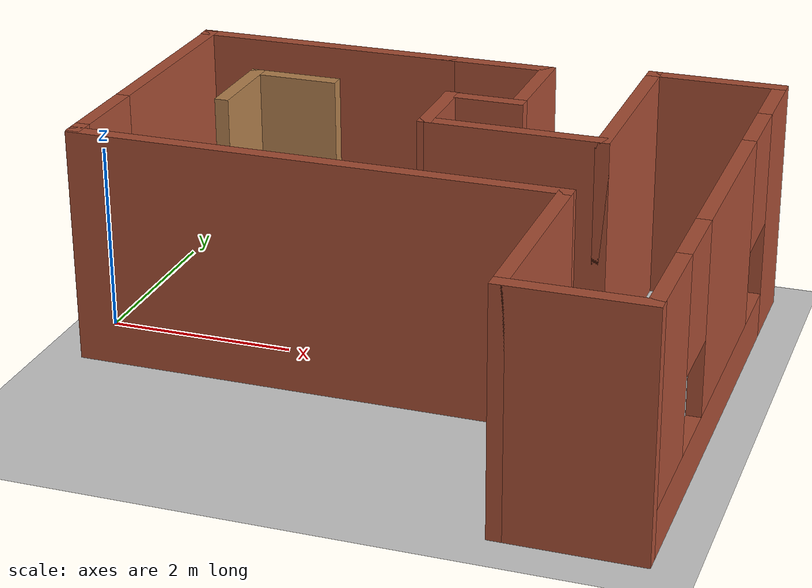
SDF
<sdf version="1.7">
 <world name="default">
  <light name="sun" type="directional">
   <pose>0 0 10 0 -0 0</pose>
   <diffuse>0.8 0.8 0.8 1</diffuse>
   <specular>0.2 0.2 0.2 1</specular>
   <attenuation>
    <range>1000</range>
    <constant>0.9</constant>
    <linear>0.01</linear>
    <quadratic>0.001</quadratic>
   </attenuation>
   <direction>-0.5 0.1 -0.9</direction>
   <spot><inner_angle>0</inner_angle><outer_angle>0</outer_angle><falloff>0</falloff></spot>
  </light>
  <model name="ground_plane">
   <static>1</static>
   <link name="link">
    <collision name="collision">
     <geometry><plane><normal>0 0 1</normal><size>100 100</size></plane></geometry>
     <surface><friction><ode><mu>100</mu><mu2>50</mu2></ode></friction></surface>
    </collision>
    <visual name="visual">
     <cast_shadows>0</cast_shadows>
     <geometry><plane><normal>0 0 1</normal><size>100 100</size></plane></geometry>
     <material>
      <script><uri>file://media/materials/scripts/gazebo.material</uri><name>Gazebo/Grey</name></script>
     </material>
    </visual>
   </link>
  </model>
  <gravity>0 0 -9.8</gravity>
  <magnetic_field>6e-06 2.3e-05 -4.2e-05</magnetic_field>
  <atmosphere type="adiabatic"/>
  <physics type="ode">
   <max_step_size>0.001</max_step_size>
   <real_time_factor>1</real_time_factor>
   <real_time_update_rate>1000</real_time_update_rate>
  </physics>
  <scene><ambient>0.4 0.4 0.4 1</ambient><background>0.7 0.7 0.7 1</background><shadows>1</shadows></scene>
  <spherical_coordinates>
   <surface_model>EARTH_WGS84</surface_model>
   <latitude_deg>0</latitude_deg>
   <longitude_deg>0</longitude_deg>
   <elevation>0</elevation>
   <heading_deg>0</heading_deg>
  </spherical_coordinates>
  <model name="house2">
   <pose>3.292 -0.065776 -0.005074 0 -0 0</pose>
   <link name="Wall_0">
    <pose>-3.2031 0.954274 0 0 -0 1.56888</pose>
    <visual name="Wall_0_Visual_0">
     <pose>-1.57705 0 1.25 0 -0 0</pose>
     <geometry><box><size>0.227383 0.15 2.5</size></box></geometry>
     <material>
      <script><uri>file://media/materials/scripts/gazebo.material</uri><name>Gazebo/Bricks</name></script>
      <ambient>1 1 1 1</ambient>
     </material>
     <meta><layer>0</layer></meta>
    </visual>
    <collision name="Wall_0_Collision_0">
     <geometry><box><size>0.227383 0.15 2.5</size></box></geometry>
     <pose>-1.57705 0 1.25 0 -0 0</pose>
    </collision>
    <visual name="Wall_0_Visual_1">
     <pose>0.563691 0 1.25 0 -0 0</pose>
     <geometry><box><size>2.2541 0.15 2.5</size></box></geometry>
     <material>
      <script><uri>file://media/materials/scripts/gazebo.material</uri><name>Gazebo/Bricks</name></script>
      <ambient>1 1 1 1</ambient>
     </material>
     <meta><layer>0</layer></meta>
    </visual>
    <collision name="Wall_0_Collision_1">
     <geometry><box><size>2.2541 0.15 2.5</size></box></geometry>
     <pose>0.563691 0 1.25 0 -0 0</pose>
    </collision>
    <visual name="Wall_0_Visual_2">
     <pose>-1.01336 0 2.25 0 -0 0</pose>
     <geometry><box><size>0.9 0.15 0.5</size></box></geometry>
     <material>
      <script><uri>file://media/materials/scripts/gazebo.material</uri><name>Gazebo/Bricks</name></script>
      <ambient>1 1 1 1</ambient>
     </material>
     <meta><layer>0</layer></meta>
    </visual>
    <collision name="Wall_0_Collision_2">
     <geometry><box><size>0.9 0.15 0.5</size></box></geometry>
     <pose>-1.01336 0 2.25 0 -0 0</pose>
    </collision>
   </link>
   <link name="Wall_1">
    <collision name="Wall_1_Collision">
     <geometry><box><size>3 0.15 2.5</size></box></geometry>
     <pose>0 0 1.25 0 -0 0</pose>
    </collision>
    <visual name="Wall_1_Visual">
     <pose>0 0 1.25 0 -0 0</pose>
     <geometry><box><size>3 0.15 2.5</size></box></geometry>
     <material>
      <script><uri>file://media/materials/scripts/gazebo.material</uri><name>Gazebo/Bricks</name></script>
      <ambient>1 1 1 1</ambient>
     </material>
     <meta><layer>0</layer></meta>
    </visual>
    <pose>-1.78501 2.59002 0 0 -0 0</pose>
   </link>
   <link name="Wall_10">
    <collision name="Wall_10_Collision">
     <geometry><box><size>5.20674 0.15 2.5</size></box></geometry>
     <pose>0 0 1.25 0 -0 0</pose>
    </collision>
    <visual name="Wall_10_Visual">
     <pose>0 0 1.25 0 -0 0</pose>
     <geometry><box><size>5.20674 0.15 2.5</size></box></geometry>
     <material>
      <script><uri>file://media/materials/scripts/gazebo.material</uri><name>Gazebo/Bricks</name></script>
      <ambient>1 1 1 1</ambient>
     </material>
     <meta><layer>0</layer></meta>
    </visual>
    <pose>-0.668359 -0.696256 0 0 -0 3.14011</pose>
   </link>
   <link name="Wall_13">
    <collision name="Wall_13_Collision">
     <geometry><box><size>1 0.15 2.5</size></box></geometry>
     <pose>0 0 1.25 0 -0 0</pose>
    </collision>
    <visual name="Wall_13_Visual">
     <pose>0 0 1.25 0 -0 0</pose>
     <geometry><box><size>1 0.15 2.5</size></box></geometry>
     <material>
      <script><uri>file://media/materials/scripts/gazebo.material</uri><name>Gazebo/Wood</name></script>
      <ambient>1 1 1 1</ambient>
     </material>
     <meta><layer>0</layer></meta>
    </visual>
    <pose>-1.75403 1.50791 0 0 -0 0</pose>
   </link>
   <link name="Wall_15">
    <collision name="Wall_15_Collision">
     <geometry><box><size>1.25 0.15 2.5</size></box></geometry>
     <pose>0 0 1.25 0 -0 0</pose>
    </collision>
    <visual name="Wall_15_Visual">
     <pose>0 0 1.25 0 -0 0</pose>
     <geometry><box><size>1.25 0.15 2.5</size></box></geometry>
     <material>
      <script><uri>file://media/materials/scripts/gazebo.material</uri><name>Gazebo/Bricks</name></script>
      <ambient>1 1 1 1</ambient>
     </material>
     <meta><layer>0</layer></meta>
    </visual>
    <pose>0.189994 2.59002 0 0 -0 0</pose>
   </link>
   <link name="Wall_16">
    <collision name="Wall_16_Collision">
     <geometry><box><size>1.25 0.15 2.5</size></box></geometry>
     <pose>0 0 1.25 0 -0 0</pose>
    </collision>
    <visual name="Wall_16_Visual">
     <pose>0 0 1.25 0 -0 0</pose>
     <geometry><box><size>1.25 0.15 2.5</size></box></geometry>
     <material>
      <script><uri>file://media/materials/scripts/gazebo.material</uri><name>Gazebo/Bricks</name></script>
      <ambient>1 1 1 1</ambient>
     </material>
     <meta><layer>0</layer></meta>
    </visual>
    <pose>0.739994 2.04002 0 0 -0 -1.5708</pose>
   </link>
   <link name="Wall_17">
    <collision name="Wall_17_Collision">
     <geometry><box><size>0.75 0.15 2.5</size></box></geometry>
     <pose>0 0 1.25 0 -0 0</pose>
    </collision>
    <visual name="Wall_17_Visual">
     <pose>0 0 1.25 0 -0 0</pose>
     <geometry><box><size>0.75 0.15 2.5</size></box></geometry>
     <material>
      <script><uri>file://media/materials/scripts/gazebo.material</uri><name>Gazebo/Bricks</name></script>
      <ambient>1 1 1 1</ambient>
     </material>
     <meta><layer>0</layer></meta>
    </visual>
    <pose>0.439994 1.49002 0 0 -0 3.14159</pose>
   </link>
   <link name="Wall_19">
    <collision name="Wall_19_Collision">
     <geometry><box><size>0.951146 0.15 2.5</size></box></geometry>
     <pose>0 0 1.25 0 -0 0</pose>
    </collision>
    <visual name="Wall_19_Visual">
     <pose>0 0 1.25 0 -0 0</pose>
     <geometry><box><size>0.951146 0.15 2.5</size></box></geometry>
     <material>
      <script><uri>file://media/materials/scripts/gazebo.material</uri><name>Gazebo/Bricks</name></script>
      <ambient>1 1 1 1</ambient>
     </material>
     <meta><layer>0</layer></meta>
    </visual>
    <pose>0.008745 1.10057 0 0 -0 1.57394</pose>
   </link>
   <link name="Wall_21">
    <collision name="Wall_21_Collision">
     <geometry><box><size>1 0.15 2.5</size></box></geometry>
     <pose>0 0 1.25 0 -0 0</pose>
    </collision>
    <visual name="Wall_21_Visual">
     <pose>0 0 1.25 0 -0 0</pose>
     <geometry><box><size>1 0.15 2.5</size></box></geometry>
     <material>
      <script><uri>file://media/materials/scripts/gazebo.material</uri><name>Gazebo/Wood</name></script>
      <ambient>1 1 1 1</ambient>
     </material>
     <meta><layer>0</layer></meta>
    </visual>
    <pose>-2.17903 1.08291 0 0 -0 -1.5708</pose>
   </link>
   <link name="Wall_4">
    <collision name="Wall_4_Collision">
     <geometry><box><size>2 0.15 2.5</size></box></geometry>
     <pose>0 0 1.25 0 -0 0</pose>
    </collision>
    <visual name="Wall_4_Visual">
     <pose>0 0 1.25 0 -0 0</pose>
     <geometry><box><size>2 0.15 2.5</size></box></geometry>
     <material>
      <script><uri>file://media/materials/scripts/gazebo.material</uri><name>Gazebo/Bricks</name></script>
      <ambient>1 1 1 1</ambient>
     </material>
     <meta><layer>0</layer></meta>
    </visual>
    <pose>0.935006 0.7 0 0 -0 0</pose>
   </link>
   <link name="Wall_5">
    <collision name="Wall_5_Collision">
     <geometry><box><size>2.25 0.15 2.5</size></box></geometry>
     <pose>0 0 1.25 0 -0 0</pose>
    </collision>
    <visual name="Wall_5_Visual">
     <pose>0 0 1.25 0 -0 0</pose>
     <geometry><box><size>2.25 0.15 2.5</size></box></geometry>
     <material>
      <script><uri>file://media/materials/scripts/gazebo.material</uri><name>Gazebo/Bricks</name></script>
      <ambient>1 1 1 1</ambient>
     </material>
     <meta><layer>0</layer></meta>
    </visual>
    <pose>1.86001 1.75 0 0 -0 1.5708</pose>
   </link>
   <link name="Wall_6">
    <collision name="Wall_6_Collision">
     <geometry><box><size>1.5 0.15 2.5</size></box></geometry>
     <pose>0 0 1.25 0 -0 0</pose>
    </collision>
    <visual name="Wall_6_Visual">
     <pose>0 0 1.25 0 -0 0</pose>
     <geometry><box><size>1.5 0.15 2.5</size></box></geometry>
     <material>
      <script><uri>file://media/materials/scripts/gazebo.material</uri><name>Gazebo/Bricks</name></script>
      <ambient>1 1 1 1</ambient>
     </material>
     <meta><layer>0</layer></meta>
    </visual>
    <pose>2.53501 2.8 0 0 -0 0</pose>
   </link>
   <link name="Wall_7">
    <pose>3.21001 -0 0 0 -0 -1.5708</pose>
    <visual name="Wall_7_Visual_0">
     <pose>-2.41457 0 1.25 0 -0 0</pose>
     <geometry><box><size>0.920869 0.15 2.5</size></box></geometry>
     <material>
      <script><uri>file://media/materials/scripts/gazebo.material</uri><name>Gazebo/Bricks</name></script>
      <ambient>1 1 1 1</ambient>
     </material>
     <meta><layer>0</layer></meta>
    </visual>
    <collision name="Wall_7_Collision_0">
     <geometry><box><size>0.920869 0.15 2.5</size></box></geometry>
     <pose>-2.41457 0 1.25 0 -0 0</pose>
    </collision>
    <visual name="Wall_7_Visual_1">
     <pose>0.460435 0 0.25 0 -0 0</pose>
     <geometry><box><size>4.82913 0.15 0.5</size></box></geometry>
     <material>
      <script><uri>file://media/materials/scripts/gazebo.material</uri><name>Gazebo/Bricks</name></script>
      <ambient>1 1 1 1</ambient>
     </material>
     <meta><layer>0</layer></meta>
    </visual>
    <collision name="Wall_7_Collision_1">
     <geometry><box><size>4.82913 0.15 0.5</size></box></geometry>
     <pose>0.460435 0 0.25 0 -0 0</pose>
    </collision>
    <visual name="Wall_7_Visual_2">
     <pose>-0.108071 0 1.5 0 -0 0</pose>
     <geometry><box><size>2.09212 0.15 2</size></box></geometry>
     <material>
      <script><uri>file://media/materials/scripts/gazebo.material</uri><name>Gazebo/Bricks</name></script>
      <ambient>1 1 1 1</ambient>
     </material>
     <meta><layer>0</layer></meta>
    </visual>
    <collision name="Wall_7_Collision_2">
     <geometry><box><size>2.09212 0.15 2</size></box></geometry>
     <pose>-0.108071 0 1.5 0 -0 0</pose>
    </collision>
    <visual name="Wall_7_Visual_3">
     <pose>2.30649 0 1.5 0 -0 0</pose>
     <geometry><box><size>1.13701 0.15 2</size></box></geometry>
     <material>
      <script><uri>file://media/materials/scripts/gazebo.material</uri><name>Gazebo/Bricks</name></script>
      <ambient>1 1 1 1</ambient>
     </material>
     <meta><layer>0</layer></meta>
    </visual>
    <collision name="Wall_7_Collision_3">
     <geometry><box><size>1.13701 0.15 2</size></box></geometry>
     <pose>2.30649 0 1.5 0 -0 0</pose>
    </collision>
    <visual name="Wall_7_Visual_4">
     <pose>-1.55413 0 1.9 0 -0 0</pose>
     <geometry><box><size>0.8 0.15 1.2</size></box></geometry>
     <material>
      <script><uri>file://media/materials/scripts/gazebo.material</uri><name>Gazebo/Bricks</name></script>
      <ambient>1 1 1 1</ambient>
     </material>
     <meta><layer>0</layer></meta>
    </visual>
    <collision name="Wall_7_Collision_4">
     <geometry><box><size>0.8 0.15 1.2</size></box></geometry>
     <pose>-1.55413 0 1.9 0 -0 0</pose>
    </collision>
    <visual name="Wall_7_Visual_5">
     <pose>1.33799 0 1.9 0 -0 0</pose>
     <geometry><box><size>0.8 0.15 1.2</size></box></geometry>
     <material>
      <script><uri>file://media/materials/scripts/gazebo.material</uri><name>Gazebo/Bricks</name></script>
      <ambient>1 1 1 1</ambient>
     </material>
     <meta><layer>0</layer></meta>
    </visual>
    <collision name="Wall_7_Collision_5">
     <geometry><box><size>0.8 0.15 1.2</size></box></geometry>
     <pose>1.33799 0 1.9 0 -0 0</pose>
    </collision>
   </link>
   <link name="Wall_8">
    <collision name="Wall_8_Collision">
     <geometry><box><size>1.5 0.15 2.5</size></box></geometry>
     <pose>0 0 1.25 0 -0 0</pose>
    </collision>
    <visual name="Wall_8_Visual">
     <pose>0 0 1.25 0 -0 0</pose>
     <geometry><box><size>1.5 0.15 2.5</size></box></geometry>
     <material>
      <script><uri>file://media/materials/scripts/gazebo.material</uri><name>Gazebo/Bricks</name></script>
      <ambient>1 1 1 1</ambient>
     </material>
     <meta><layer>0</layer></meta>
    </visual>
    <pose>2.53501 -2.8 0 0 -0 3.14159</pose>
   </link>
   <link name="Wall_9">
    <collision name="Wall_9_Collision">
     <geometry><box><size>2.25 0.15 2.5</size></box></geometry>
     <pose>0 0 1.25 0 -0 0</pose>
    </collision>
    <visual name="Wall_9_Visual">
     <pose>0 0 1.25 0 -0 0</pose>
     <geometry><box><size>2.25 0.15 2.5</size></box></geometry>
     <material>
      <script><uri>file://media/materials/scripts/gazebo.material</uri><name>Gazebo/Bricks</name></script>
      <ambient>1 1 1 1</ambient>
     </material>
     <meta><layer>0</layer></meta>
    </visual>
    <pose>1.86001 -1.75 0 0 -0 1.5708</pose>
   </link>
   <static>1</static>
  </model>
  <model name="amrobot_one">
   <link name="base_link">
    <inertial>
     <pose>0.107429 0 0.067786 0 -0 0</pose>
     <mass>0.7</mass>
     <inertia>
      <ixx>0.00462993</ixx>
      <ixy>0</ixy>
      <ixz>0.000919961</ixz>
      <iyy>0.00715232</iyy>
      <iyz>0</iyz>
      <izz>0.0045264</izz>
     </inertia>
    </inertial>
    <collision name="base_link_fixed_joint_lump__chassis_collision">
     <pose>0.095 0 0.055 0 -0 0</pose>
     <geometry><box><size>0.255 0.15 0.09</size></box></geometry>
    </collision>
    <collision name="base_link_fixed_joint_lump__caster_wheel_collision_1">
     <pose>0.1875 0 -0.0225 0 -0 0</pose>
     <geometry><sphere><radius>0.01</radius></sphere></geometry>
     <surface><friction><ode><mu>0.001</mu><mu2>0.001</mu2></ode></friction></surface>
    </collision>
    <collision name="base_link_fixed_joint_lump__laser_frame_collision_2">
     <pose>0.0895 0 0.222 0 -0 0</pose>
     <geometry><cylinder><length>0.04</length><radius>0.05</radius></cylinder></geometry>
    </collision>
    <visual name="base_link_fixed_joint_lump__chassis_visual">
     <pose>0.095 0 0.055 0 -0 0</pose>
     <geometry><box><size>0.255 0.15 0.09</size></box></geometry>
     <material>
      <script><name>Gazebo/Orange</name><uri>file://media/materials/scripts/gazebo.material</uri></script>
     </material>
    </visual>
    <visual name="base_link_fixed_joint_lump__caster_wheel_visual_1">
     <pose>0.1875 0 -0.0225 0 -0 0</pose>
     <geometry><sphere><radius>0.01</radius></sphere></geometry>
     <material>
      <script><name>Gazebo/White</name><uri>file://media/materials/scripts/gazebo.material</uri></script>
     </material>
    </visual>
    <visual name="base_link_fixed_joint_lump__face_link_visual_2">
     <pose>0.2225 0.05 0.065 3.14159 1.57079 3.14159</pose>
     <geometry><cylinder><length>0.002</length><radius>0.01</radius></cylinder></geometry>
     <material>
      <script><name>Gazebo/Black</name><uri>file://media/materials/scripts/gazebo.material</uri></script>
     </material>
    </visual>
    <visual name="base_link_fixed_joint_lump__face_link_visual_3">
     <pose>0.2225 -0.05 0.065 3.14159 1.57079 3.14159</pose>
     <geometry><cylinder><length>0.002</length><radius>0.01</radius></cylinder></geometry>
     <material>
      <script><name>Gazebo/Black</name><uri>file://media/materials/scripts/gazebo.material</uri></script>
     </material>
    </visual>
    <visual name="base_link_fixed_joint_lump__face_link_visual_4">
     <pose>0.2115 0 0.055 0 1.5 0</pose>
     <geometry><cylinder><length>0.02</length><radius>0.05</radius></cylinder></geometry>
     <material>
      <script><name>Gazebo/Black</name><uri>file://media/materials/scripts/gazebo.material</uri></script>
     </material>
    </visual>
    <visual name="base_link_fixed_joint_lump__laser_frame_visual_5">
     <pose>0.0895 0 0.222 0 -0 0</pose>
     <geometry><cylinder><length>0.04</length><radius>0.05</radius></cylinder></geometry>
     <material>
      <script><name>Gazebo/Black</name><uri>file://media/materials/scripts/gazebo.material</uri></script>
     </material>
    </visual>
    <visual name="base_link_fixed_joint_lump__laser_frame_visual_6">
     <pose>0.0895 0 0.172 0 -0 0</pose>
     <geometry><cylinder><length>0.1</length><radius>0.01</radius></cylinder></geometry>
     <material>
      <script><name>Gazebo/Black</name><uri>file://media/materials/scripts/gazebo.material</uri></script>
     </material>
    </visual>
    <sensor name="laser" type="ray">
     <visualize>0</visualize>
     <update_rate>10</update_rate>
     <ray>
      <scan>
       <horizontal>
        <samples>360</samples>
        <min_angle>-3.14</min_angle>
        <max_angle>3.14</max_angle>
        <resolution>1</resolution>
       </horizontal>
       <vertical><samples>1</samples><min_angle>0</min_angle><max_angle>0</max_angle></vertical>
      </scan>
      <range><min>0.3</min><max>12</max></range>
     </ray>
     <plugin name="laser_controller" filename="libgazebo_ros_ray_sensor.so">
      <ros><argument>~/out:=scan</argument></ros>
      <output_type>sensor_msgs/LaserScan</output_type>
      <frame_name>laser_frame</frame_name>
     </plugin>
     <pose>0.0895 0 0.222 0 -0 0</pose>
    </sensor>
   </link>
   <joint name="left_wheel_joint" type="revolute">
    <pose relative_to="base_link">0 0.085 0 -1.5708 0 0</pose>
    <parent>base_link</parent>
    <child>left_wheel</child>
    <axis>
     <xyz>0 0 1</xyz>
     <limit><lower>-1e+16</lower><upper>1e+16</upper></limit>
     <dynamics><spring_reference>0</spring_reference><spring_stiffness>0</spring_stiffness></dynamics>
    </axis>
   </joint>
   <link name="left_wheel">
    <pose relative_to="left_wheel_joint">0 0 0 0 -0 0</pose>
    <inertial>
     <mass>0.05</mass>
     <inertia>
      <ixx>1.58073e-05</ixx>
      <ixy>0</ixy>
      <ixz>0</ixz>
      <iyy>1.58073e-05</iyy>
      <iyz>0</iyz>
      <izz>2.64063e-05</izz>
     </inertia>
    </inertial>
    <collision name="left_wheel_collision">
     <geometry><sphere><radius>0.0325</radius></sphere></geometry>
    </collision>
    <visual name="left_wheel_visual">
     <geometry><cylinder><length>0.025</length><radius>0.0325</radius></cylinder></geometry>
     <material>
      <script><name>Gazebo/Blue</name><uri>file://media/materials/scripts/gazebo.material</uri></script>
     </material>
    </visual>
   </link>
   <joint name="right_wheel_joint" type="revolute">
    <pose relative_to="base_link">0 -0.085 0 1.5708 -0 0</pose>
    <parent>base_link</parent>
    <child>right_wheel</child>
    <axis>
     <xyz>0 0 -1</xyz>
     <limit><lower>-1e+16</lower><upper>1e+16</upper></limit>
     <dynamics><spring_reference>0</spring_reference><spring_stiffness>0</spring_stiffness></dynamics>
    </axis>
   </joint>
   <link name="right_wheel">
    <pose relative_to="right_wheel_joint">0 0 0 0 -0 0</pose>
    <inertial>
     <mass>0.05</mass>
     <inertia>
      <ixx>1.58073e-05</ixx>
      <ixy>0</ixy>
      <ixz>0</ixz>
      <iyy>1.58073e-05</iyy>
      <iyz>0</iyz>
      <izz>2.64063e-05</izz>
     </inertia>
    </inertial>
    <collision name="right_wheel_collision">
     <geometry><sphere><radius>0.0325</radius></sphere></geometry>
    </collision>
    <visual name="right_wheel_visual">
     <geometry><cylinder><length>0.025</length><radius>0.0325</radius></cylinder></geometry>
     <material>
      <script><name>Gazebo/Blue</name><uri>file://media/materials/scripts/gazebo.material</uri></script>
     </material>
    </visual>
   </link>
   <static>0</static>
   <plugin name="gazebo_ros2_control" filename="libgazebo_ros2_control.so">
    <parameters>/home/agvpc/amr_ws/install/amrobot_one/share/amrobot_one/config/my_controllers.yaml</parameters>
    <parameters>/home/agvpc/amr_ws/install/amrobot_one/share/amrobot_one/config/gaz_ros2_ctl_use_sim.yaml</parameters>
   </plugin>
   <pose>0.016211 2.5e-05 0.032499 1.1e-05 -6e-06 -0.005515</pose>
  </model>
 </world>
</sdf>
